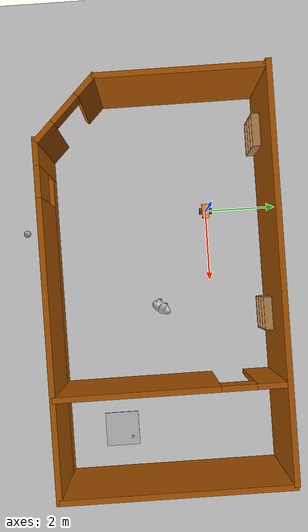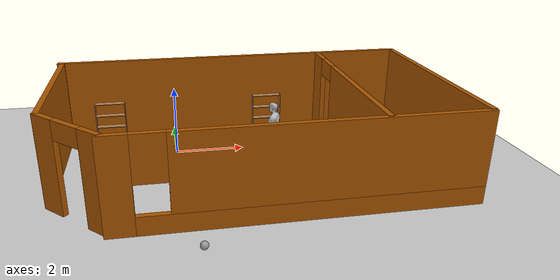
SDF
<sdf version="1.6">
 <world name="default">
  <light name="sun" type="directional">
   <pose>0 0 10 0 -0 0</pose>
   <diffuse>0.8 0.8 0.8 1</diffuse>
   <specular>0.1 0.1 0.1 1</specular>
   <attenuation>
    <range>1000</range>
    <constant>0.9</constant>
    <linear>0.01</linear>
    <quadratic>0.001</quadratic>
   </attenuation>
   <direction>-0.5 0.5 -1</direction>
  </light>
  <model name="ground_plane">
   <static>1</static>
   <link name="link">
    <collision name="collision">
     <geometry><plane><normal>0 0 1</normal><size>100 100</size></plane></geometry>
     <surface><friction><ode><mu>100</mu><mu2>50</mu2></ode></friction></surface>
    </collision>
    <visual name="visual">
     <cast_shadows>0</cast_shadows>
     <geometry><plane><normal>0 0 1</normal><size>100 100</size></plane></geometry>
     <material>
      <script><uri>file://media/materials/scripts/gazebo.material</uri><name>Gazebo/Grey</name></script>
     </material>
    </visual>
   </link>
  </model>
  <gravity>0 0 -9.8</gravity>
  <magnetic_field>6e-06 2.3e-05 -4.2e-05</magnetic_field>
  <atmosphere type="adiabatic"/>
  <physics name="default_physics" default="0" type="ode">
   <max_step_size>0.001</max_step_size>
   <real_time_factor>1</real_time_factor>
   <real_time_update_rate>1000</real_time_update_rate>
  </physics>
  <scene><ambient>0.4 0.4 0.4 1</ambient><background>0.7 0.7 0.7 1</background><shadows>1</shadows></scene>
  <spherical_coordinates>
   <surface_model>EARTH_WGS84</surface_model>
   <latitude_deg>0</latitude_deg>
   <longitude_deg>0</longitude_deg>
   <elevation>0</elevation>
   <heading_deg>0</heading_deg>
  </spherical_coordinates>
  <model name="my_robot">
   <link name="robot_footprint">
    <inertial>
     <pose>0.001325 0 0 0 -0 0</pose>
     <mass>15.1</mass>
     <inertia>
      <ixx>0.100002</ixx>
      <ixy>0</ixy>
      <ixz>-1.48675e-07</ixz>
      <iyy>0.103976</iyy>
      <iyz>0</iyz>
      <izz>0.103976</izz>
     </inertia>
    </inertial>
    <collision name="robot_footprint_fixed_joint_lump__collision_collision">
     <geometry><box><size>0.4 0.2 0.1</size></box></geometry>
    </collision>
    <collision name="robot_footprint_fixed_joint_lump__back_caster_collision_collision_1">
     <pose>-0.15 0 -0.05 0 -0 0</pose>
     <geometry><sphere><radius>0.0499</radius></sphere></geometry>
    </collision>
    <collision name="robot_footprint_fixed_joint_lump__front_caster_collision_collision_2">
     <pose>0.15 0 -0.05 0 -0 0</pose>
     <geometry><sphere><radius>0.0499</radius></sphere></geometry>
    </collision>
    <collision name="robot_footprint_fixed_joint_lump__camera_collision_collision_3">
     <pose>0.2 0 0 0 -0 0</pose>
     <geometry><box><size>0.05 0.05 0.05</size></box></geometry>
    </collision>
    <collision name="robot_footprint_fixed_joint_lump__hokuyo_collision_collision_4">
     <pose>0.15 0 0.1 0 -0 0</pose>
     <geometry><box><size>0.1 0.1 0.1</size></box></geometry>
    </collision>
    <visual name="robot_footprint_fixed_joint_lump__chassis_visual_visual">
     <geometry><box><size>0.4 0.2 0.1</size></box></geometry>
     <material>
      <script><name>Gazebo/Orange</name><uri>file://media/materials/scripts/gazebo.material</uri></script>
     </material>
    </visual>
    <visual name="robot_footprint_fixed_joint_lump__back_caster_visual_visual_1">
     <pose>-0.15 0 -0.05 0 -0 0</pose>
     <geometry><sphere><radius>0.05</radius></sphere></geometry>
    </visual>
    <visual name="robot_footprint_fixed_joint_lump__front_caster_visual_visual_2">
     <pose>0.15 0 -0.05 0 -0 0</pose>
     <geometry><sphere><radius>0.05</radius></sphere></geometry>
    </visual>
    <visual name="robot_footprint_fixed_joint_lump__camera_visual_visual_3">
     <pose>0.2 0 0 0 -0 0</pose>
     <geometry><box><size>0.05 0.05 0.05</size></box></geometry>
     <material>
      <script><name>Gazebo/Grey</name><uri>file://media/materials/scripts/gazebo.material</uri></script>
     </material>
    </visual>
    <visual name="robot_footprint_fixed_joint_lump__hokuyo_visual_visual_4">
     <pose>0.15 0 0.1 0 -0 0</pose>
     <geometry>
      <mesh>
       <scale>1 1 1</scale>
       <uri>/home/navars/Desktop/other/nanodegree/robotics-project2-ros/catkin_ws/src/my_robot/meshes/hokuyo.dae</uri>
      </mesh>
     </geometry>
     <material><script><uri>__default__</uri><name>__default__</name></script></material>
    </visual>
    <sensor name="camera1" type="camera">
     <update_rate>30</update_rate>
     <camera name="head">
      <horizontal_fov>1.39626</horizontal_fov>
      <image><width>800</width><height>800</height><format>R8G8B8</format></image>
      <clip><near>0.02</near><far>300</far></clip>
     </camera>
     <plugin name="camera_controller" filename="libgazebo_ros_camera.so">
      <alwaysOn>true</alwaysOn>
      <updateRate>0.0</updateRate>
      <cameraName>camera</cameraName>
      <imageTopicName>rgb/image_raw</imageTopicName>
      <cameraInfoTopicName>rgb/camera_info</cameraInfoTopicName>
      <frameName>camera</frameName>
      <hackBaseline>0.07</hackBaseline>
      <distortionK1>0.0</distortionK1>
      <distortionK2>0.0</distortionK2>
      <distortionK3>0.0</distortionK3>
      <distortionT1>0.0</distortionT1>
      <distortionT2>0.0</distortionT2>
      <robotNamespace>/</robotNamespace>
     </plugin>
     <pose>0.2 0 0 0 -0 0</pose>
    </sensor>
    <sensor name="head_hokuyo_sensor" type="ray">
     <visualize>0</visualize>
     <update_rate>40</update_rate>
     <ray>
      <scan>
       <horizontal>
        <samples>720</samples>
        <resolution>1</resolution>
        <min_angle>-1.5708</min_angle>
        <max_angle>1.5708</max_angle>
       </horizontal>
       <vertical><samples>1</samples><min_angle>0</min_angle><max_angle>0</max_angle></vertical>
      </scan>
      <range><min>0.1</min><max>30</max><resolution>0.01</resolution></range>
      <noise><type>gaussian</type><mean>0</mean><stddev>0.01</stddev></noise>
     </ray>
     <plugin name="gazebo_ros_head_hokuyo_controller" filename="libgazebo_ros_laser.so">
      <topicName>/scan</topicName>
      <frameName>hokuyo</frameName>
      <robotNamespace>/</robotNamespace>
     </plugin>
     <pose>0.15 0 0.1 0 -0 0</pose>
    </sensor>
   </link>
   <link name="left_wheel">
    <pose>0 0.15 0 0 -0 0</pose>
    <inertial>
     <pose>0 0 0 -0 1.5707 1.5707</pose>
     <mass>5</mass>
     <inertia><ixx>0.1</ixx><ixy>0</ixy><ixz>0</ixz><iyy>0.1</iyy><iyz>0</iyz><izz>0.1</izz></inertia>
    </inertial>
    <collision name="left_wheel_collision_collision">
     <pose>0 0 0 3.14159 1.57079 -1.57089</pose>
     <geometry><cylinder><length>0.05</length><radius>0.1</radius></cylinder></geometry>
    </collision>
    <visual name="left_wheel_visual_visual">
     <pose>0 0 0 3.14159 1.57079 -1.57089</pose>
     <geometry><cylinder><length>0.05</length><radius>0.1</radius></cylinder></geometry>
     <material>
      <script><name>Gazebo/DarkGrey</name><uri>file://media/materials/scripts/gazebo.material</uri></script>
     </material>
    </visual>
   </link>
   <joint name="left_wheel_hinge" type="revolute">
    <child>left_wheel</child>
    <parent>robot_footprint</parent>
    <axis>
     <xyz>0 1 0</xyz>
     <limit><lower>-1e+16</lower><upper>1e+16</upper></limit>
     <dynamics>
      <damping>1</damping>
      <friction>1</friction>
      <spring_reference>0</spring_reference>
      <spring_stiffness>0</spring_stiffness>
     </dynamics>
     <use_parent_model_frame>1</use_parent_model_frame>
    </axis>
   </joint>
   <link name="right_wheel">
    <pose>0 -0.15 0 0 -0 0</pose>
    <inertial>
     <pose>0 0 0 -0 1.5707 1.5707</pose>
     <mass>5</mass>
     <inertia><ixx>0.1</ixx><ixy>0</ixy><ixz>0</ixz><iyy>0.1</iyy><iyz>0</iyz><izz>0.1</izz></inertia>
    </inertial>
    <collision name="right_wheel_collision_collision">
     <pose>0 0 0 3.14159 1.57079 -1.57089</pose>
     <geometry><cylinder><length>0.05</length><radius>0.1</radius></cylinder></geometry>
    </collision>
    <visual name="right_wheel_visual_visual">
     <pose>0 0 0 3.14159 1.57079 -1.57089</pose>
     <geometry><cylinder><length>0.05</length><radius>0.1</radius></cylinder></geometry>
     <material>
      <script><name>Gazebo/DarkGrey</name><uri>file://media/materials/scripts/gazebo.material</uri></script>
     </material>
    </visual>
   </link>
   <joint name="right_wheel_hinge" type="revolute">
    <child>right_wheel</child>
    <parent>robot_footprint</parent>
    <axis>
     <xyz>0 1 0</xyz>
     <limit><lower>-1e+16</lower><upper>1e+16</upper></limit>
     <dynamics>
      <damping>1</damping>
      <friction>1</friction>
      <spring_reference>0</spring_reference>
      <spring_stiffness>0</spring_stiffness>
     </dynamics>
     <use_parent_model_frame>1</use_parent_model_frame>
    </axis>
   </joint>
   <static>0</static>
   <plugin name="differential_drive_controller" filename="libgazebo_ros_diff_drive.so">
    <legacyMode>false</legacyMode>
    <alwaysOn>true</alwaysOn>
    <updateRate>10</updateRate>
    <leftJoint>left_wheel_hinge</leftJoint>
    <rightJoint>right_wheel_hinge</rightJoint>
    <wheelSeparation>0.4</wheelSeparation>
    <wheelDiameter>0.2</wheelDiameter>
    <torque>10</torque>
    <commandTopic>cmd_vel</commandTopic>
    <odometryTopic>odom</odometryTopic>
    <odometryFrame>odom</odometryFrame>
    <robotBaseFrame>robot_footprint</robotBaseFrame>
    <publishWheelTF>false</publishWheelTF>
    <publishWheelJointState>false</publishWheelJointState>
    <rosDebugLevel>na</rosDebugLevel>
    <wheelAcceleration>0</wheelAcceleration>
    <wheelTorque>5</wheelTorque>
    <odometrySource>world</odometrySource>
    <publishTf>1</publishTf>
    <publishOdomTF>true</publishOdomTF>
    <robotNamespace>/</robotNamespace>
   </plugin>
   <pose>-7e-06 -0.009533 0.099995 2.1e-05 0.000657 0.002562</pose>
  </model>
  <model name="ingrid_0_0">
   <link name="Wall_0">
    <pose>-5.26939 0.734924 0 0 0 -1.5708</pose>
    <inertial>
     <mass>0.979243</mass>
     <inertia>
      <ixx>0.979243</ixx>
      <ixy>0</ixy>
      <ixz>0</ixz>
      <iyy>0.959129</iyy>
      <iyz>0</iyz>
      <izz>0.959129</izz>
     </inertia>
    </inertial>
    <visual name="Wall_0_Visual">
     <pose>0 0 1.25 0 -0 0</pose>
     <geometry><box><size>4.40661 0.15 2.5</size></box></geometry>
     <material>
      <script><uri>file://media/materials/scripts/gazebo.material</uri><name>Gazebo/Grey</name></script>
      <ambient>0.667 0.333 0 1</ambient>
      <diffuse>0.7 0.7 0.7 1</diffuse>
      <specular>0.01 0.01 0.01 1</specular>
      <emissive>0 0 0 1</emissive>
      <shader type="vertex"><normal_map>__default__</normal_map></shader>
     </material>
    </visual>
    <collision name="Wall_0_Collision">
     <pose>0 0 1.25 0 -0 0</pose>
     <geometry><box><size>4.40661 0.15 2.5</size></box></geometry>
     <surface>
      <friction>
       <ode><mu>1</mu><mu2>1</mu2><fdir1>0 0 0</fdir1><slip1>0</slip1><slip2>0</slip2></ode>
       <torsional>
        <coefficient>1</coefficient>
        <patch_radius>0</patch_radius>
        <surface_radius>0</surface_radius>
        <use_patch_radius>1</use_patch_radius>
        <ode><slip>0</slip></ode>
       </torsional>
      </friction>
      <bounce><restitution_coefficient>0</restitution_coefficient><threshold>1e+06</threshold></bounce>
      <contact>
       <collide_without_contact>0</collide_without_contact>
       <collide_without_contact_bitmask>1</collide_without_contact_bitmask>
       <collide_bitmask>1</collide_bitmask>
       <ode>
        <soft_cfm>0</soft_cfm>
        <soft_erp>0.2</soft_erp>
        <kp>1e+13</kp>
        <kd>1</kd>
        <max_vel>0.01</max_vel>
        <min_depth>0</min_depth>
       </ode>
       <bullet>
        <split_impulse>1</split_impulse>
        <split_impulse_penetration_threshold>-0.01</split_impulse_penetration_threshold>
        <soft_cfm>0</soft_cfm>
        <soft_erp>0.2</soft_erp>
        <kp>1e+13</kp>
        <kd>1</kd>
       </bullet>
      </contact>
     </surface>
    </collision>
   </link>
   <link name="Wall_1">
    <pose>-4.52693 -2.18254 0 0 0 -0.785398</pose>
    <visual name="Wall_1_Visual_0">
     <pose>-0.770615 0 1.25 0 -0 0</pose>
     <geometry><box><size>0.708769 0.15 2.5</size></box></geometry>
     <material>
      <script><uri>file://media/materials/scripts/gazebo.material</uri><name>Gazebo/Grey</name></script>
      <ambient>0.666667 0.333333 0 1</ambient>
      <diffuse>0.7 0.7 0.7 1</diffuse>
      <specular>0.01 0.01 0.01 1</specular>
      <emissive>0 0 0 1</emissive>
     </material>
    </visual>
    <visual name="Wall_1_Visual_1">
     <pose>0.804385 0 1.25 0 -0 0</pose>
     <geometry><box><size>0.641231 0.15 2.5</size></box></geometry>
     <material>
      <script><uri>file://media/materials/scripts/gazebo.material</uri><name>Gazebo/Grey</name></script>
      <ambient>0.666667 0.333333 0 1</ambient>
      <diffuse>0.7 0.7 0.7 1</diffuse>
      <specular>0.01 0.01 0.01 1</specular>
      <emissive>0 0 0 1</emissive>
     </material>
    </visual>
    <visual name="Wall_1_Visual_2">
     <pose>0.033769 0 2.25 0 -0 0</pose>
     <geometry><box><size>0.9 0.15 0.5</size></box></geometry>
     <material>
      <script><uri>file://media/materials/scripts/gazebo.material</uri><name>Gazebo/Grey</name></script>
      <ambient>0.666667 0.333333 0 1</ambient>
      <diffuse>0.7 0.7 0.7 1</diffuse>
      <specular>0.01 0.01 0.01 1</specular>
      <emissive>0 0 0 1</emissive>
     </material>
    </visual>
    <collision name="Wall_1_Collision_0">
     <pose>-0.770615 0 1.25 0 -0 0</pose>
     <geometry><box><size>0.708769 0.15 2.5</size></box></geometry>
     <surface>
      <friction>
       <ode><mu>1</mu><mu2>1</mu2><fdir1>0 0 0</fdir1><slip1>0</slip1><slip2>0</slip2></ode>
       <torsional>
        <coefficient>1</coefficient>
        <patch_radius>0</patch_radius>
        <surface_radius>0</surface_radius>
        <use_patch_radius>1</use_patch_radius>
        <ode><slip>0</slip></ode>
       </torsional>
      </friction>
      <bounce><restitution_coefficient>0</restitution_coefficient><threshold>1e+06</threshold></bounce>
      <contact>
       <collide_without_contact>0</collide_without_contact>
       <collide_without_contact_bitmask>1</collide_without_contact_bitmask>
       <collide_bitmask>1</collide_bitmask>
       <ode>
        <soft_cfm>0</soft_cfm>
        <soft_erp>0.2</soft_erp>
        <kp>1e+13</kp>
        <kd>1</kd>
        <max_vel>0.01</max_vel>
        <min_depth>0</min_depth>
       </ode>
       <bullet>
        <split_impulse>1</split_impulse>
        <split_impulse_penetration_threshold>-0.01</split_impulse_penetration_threshold>
        <soft_cfm>0</soft_cfm>
        <soft_erp>0.2</soft_erp>
        <kp>1e+13</kp>
        <kd>1</kd>
       </bullet>
      </contact>
     </surface>
    </collision>
    <collision name="Wall_1_Collision_1">
     <pose>0.804385 0 1.25 0 -0 0</pose>
     <geometry><box><size>0.641231 0.15 2.5</size></box></geometry>
     <surface>
      <friction>
       <ode><mu>1</mu><mu2>1</mu2><fdir1>0 0 0</fdir1><slip1>0</slip1><slip2>0</slip2></ode>
       <torsional>
        <coefficient>1</coefficient>
        <patch_radius>0</patch_radius>
        <surface_radius>0</surface_radius>
        <use_patch_radius>1</use_patch_radius>
        <ode><slip>0</slip></ode>
       </torsional>
      </friction>
      <bounce><restitution_coefficient>0</restitution_coefficient><threshold>1e+06</threshold></bounce>
      <contact>
       <collide_without_contact>0</collide_without_contact>
       <collide_without_contact_bitmask>1</collide_without_contact_bitmask>
       <collide_bitmask>1</collide_bitmask>
       <ode>
        <soft_cfm>0</soft_cfm>
        <soft_erp>0.2</soft_erp>
        <kp>1e+13</kp>
        <kd>1</kd>
        <max_vel>0.01</max_vel>
        <min_depth>0</min_depth>
       </ode>
       <bullet>
        <split_impulse>1</split_impulse>
        <split_impulse_penetration_threshold>-0.01</split_impulse_penetration_threshold>
        <soft_cfm>0</soft_cfm>
        <soft_erp>0.2</soft_erp>
        <kp>1e+13</kp>
        <kd>1</kd>
       </bullet>
      </contact>
     </surface>
    </collision>
    <collision name="Wall_1_Collision_2">
     <pose>0.033769 0 2.25 0 -0 0</pose>
     <geometry><box><size>0.9 0.15 0.5</size></box></geometry>
     <surface>
      <friction>
       <ode><mu>1</mu><mu2>1</mu2><fdir1>0 0 0</fdir1><slip1>0</slip1><slip2>0</slip2></ode>
       <torsional>
        <coefficient>1</coefficient>
        <patch_radius>0</patch_radius>
        <surface_radius>0</surface_radius>
        <use_patch_radius>1</use_patch_radius>
        <ode><slip>0</slip></ode>
       </torsional>
      </friction>
      <bounce><restitution_coefficient>0</restitution_coefficient><threshold>1e+06</threshold></bounce>
      <contact>
       <collide_without_contact>0</collide_without_contact>
       <collide_without_contact_bitmask>1</collide_without_contact_bitmask>
       <collide_bitmask>1</collide_bitmask>
       <ode>
        <soft_cfm>0</soft_cfm>
        <soft_erp>0.2</soft_erp>
        <kp>1e+13</kp>
        <kd>1</kd>
        <max_vel>0.01</max_vel>
        <min_depth>0</min_depth>
       </ode>
       <bullet>
        <split_impulse>1</split_impulse>
        <split_impulse_penetration_threshold>-0.01</split_impulse_penetration_threshold>
        <soft_cfm>0</soft_cfm>
        <soft_erp>0.2</soft_erp>
        <kp>1e+13</kp>
        <kd>1</kd>
       </bullet>
      </contact>
     </surface>
    </collision>
   </link>
   <link name="Wall_2">
    <pose>0.763232 -2.99616 -0.016019 0 -0 0</pose>
    <visual name="Wall_2_Visual_0">
     <pose>-4.26276 0 1.25 0 -0 0</pose>
     <geometry><box><size>0.724472 0.15 2.5</size></box></geometry>
     <material>
      <script><uri>file://media/materials/scripts/gazebo.material</uri><name>Gazebo/Grey</name></script>
      <ambient>0.666667 0.333333 0 1</ambient>
      <diffuse>0.7 0.7 0.7 1</diffuse>
      <specular>0.01 0.01 0.01 1</specular>
      <emissive>0 0 0 1</emissive>
     </material>
    </visual>
    <visual name="Wall_2_Visual_1">
     <pose>0.362236 0 0.25 0 -0 0</pose>
     <geometry><box><size>8.52553 0.15 0.5</size></box></geometry>
     <material>
      <script><uri>file://media/materials/scripts/gazebo.material</uri><name>Gazebo/Grey</name></script>
      <ambient>0.666667 0.333333 0 1</ambient>
      <diffuse>0.7 0.7 0.7 1</diffuse>
      <specular>0.01 0.01 0.01 1</specular>
      <emissive>0 0 0 1</emissive>
     </material>
    </visual>
    <visual name="Wall_2_Visual_3">
     <pose>-3.50053 0 1.9 0 -0 0</pose>
     <geometry><box><size>0.8 0.15 1.2</size></box></geometry>
     <material>
      <script><uri>file://media/materials/scripts/gazebo.material</uri><name>Gazebo/Grey</name></script>
      <ambient>0.666667 0.333333 0 1</ambient>
      <diffuse>0.7 0.7 0.7 1</diffuse>
      <specular>0.01 0.01 0.01 1</specular>
      <emissive>0 0 0 1</emissive>
     </material>
    </visual>
    <visual name="Wall_2_Visual_2">
     <pose>0.762236 0 1.5 0 -0 0</pose>
     <geometry><box><size>7.72553 0.15 2</size></box></geometry>
     <material>
      <script><uri>file://media/materials/scripts/gazebo.material</uri><name>Gazebo/Grey</name></script>
      <ambient>0.666667 0.333333 0 1</ambient>
      <diffuse>0.7 0.7 0.7 1</diffuse>
      <specular>0.01 0.01 0.01 1</specular>
      <emissive>0 0 0 1</emissive>
     </material>
    </visual>
    <collision name="Wall_2_Collision_0">
     <pose>-4.26276 0 1.25 0 -0 0</pose>
     <geometry><box><size>0.724472 0.15 2.5</size></box></geometry>
     <surface>
      <friction>
       <ode><mu>1</mu><mu2>1</mu2><fdir1>0 0 0</fdir1><slip1>0</slip1><slip2>0</slip2></ode>
       <torsional>
        <coefficient>1</coefficient>
        <patch_radius>0</patch_radius>
        <surface_radius>0</surface_radius>
        <use_patch_radius>1</use_patch_radius>
        <ode><slip>0</slip></ode>
       </torsional>
      </friction>
      <bounce><restitution_coefficient>0</restitution_coefficient><threshold>1e+06</threshold></bounce>
      <contact>
       <collide_without_contact>0</collide_without_contact>
       <collide_without_contact_bitmask>1</collide_without_contact_bitmask>
       <collide_bitmask>1</collide_bitmask>
       <ode>
        <soft_cfm>0</soft_cfm>
        <soft_erp>0.2</soft_erp>
        <kp>1e+13</kp>
        <kd>1</kd>
        <max_vel>0.01</max_vel>
        <min_depth>0</min_depth>
       </ode>
       <bullet>
        <split_impulse>1</split_impulse>
        <split_impulse_penetration_threshold>-0.01</split_impulse_penetration_threshold>
        <soft_cfm>0</soft_cfm>
        <soft_erp>0.2</soft_erp>
        <kp>1e+13</kp>
        <kd>1</kd>
       </bullet>
      </contact>
     </surface>
    </collision>
    <collision name="Wall_2_Collision_2">
     <pose>0.762236 0 1.5 0 -0 0</pose>
     <geometry><box><size>7.72553 0.15 2</size></box></geometry>
     <surface>
      <friction>
       <ode><mu>1</mu><mu2>1</mu2><fdir1>0 0 0</fdir1><slip1>0</slip1><slip2>0</slip2></ode>
       <torsional>
        <coefficient>1</coefficient>
        <patch_radius>0</patch_radius>
        <surface_radius>0</surface_radius>
        <use_patch_radius>1</use_patch_radius>
        <ode><slip>0</slip></ode>
       </torsional>
      </friction>
      <bounce><restitution_coefficient>0</restitution_coefficient><threshold>1e+06</threshold></bounce>
      <contact>
       <collide_without_contact>0</collide_without_contact>
       <collide_without_contact_bitmask>1</collide_without_contact_bitmask>
       <collide_bitmask>1</collide_bitmask>
       <ode>
        <soft_cfm>0</soft_cfm>
        <soft_erp>0.2</soft_erp>
        <kp>1e+13</kp>
        <kd>1</kd>
        <max_vel>0.01</max_vel>
        <min_depth>0</min_depth>
       </ode>
       <bullet>
        <split_impulse>1</split_impulse>
        <split_impulse_penetration_threshold>-0.01</split_impulse_penetration_threshold>
        <soft_cfm>0</soft_cfm>
        <soft_erp>0.2</soft_erp>
        <kp>1e+13</kp>
        <kd>1</kd>
       </bullet>
      </contact>
     </surface>
    </collision>
    <collision name="Wall_2_Collision_1">
     <pose>0.362236 0 0.25 0 -0 0</pose>
     <geometry><box><size>8.52553 0.15 0.5</size></box></geometry>
     <surface>
      <friction>
       <ode><mu>1</mu><mu2>1</mu2><fdir1>0 0 0</fdir1><slip1>0</slip1><slip2>0</slip2></ode>
       <torsional>
        <coefficient>1</coefficient>
        <patch_radius>0</patch_radius>
        <surface_radius>0</surface_radius>
        <use_patch_radius>1</use_patch_radius>
        <ode><slip>0</slip></ode>
       </torsional>
      </friction>
      <bounce><restitution_coefficient>0</restitution_coefficient><threshold>1e+06</threshold></bounce>
      <contact>
       <collide_without_contact>0</collide_without_contact>
       <collide_without_contact_bitmask>1</collide_without_contact_bitmask>
       <collide_bitmask>1</collide_bitmask>
       <ode>
        <soft_cfm>0</soft_cfm>
        <soft_erp>0.2</soft_erp>
        <kp>1e+13</kp>
        <kd>1</kd>
        <max_vel>0.01</max_vel>
        <min_depth>0</min_depth>
       </ode>
       <bullet>
        <split_impulse>1</split_impulse>
        <split_impulse_penetration_threshold>-0.01</split_impulse_penetration_threshold>
        <soft_cfm>0</soft_cfm>
        <soft_erp>0.2</soft_erp>
        <kp>1e+13</kp>
        <kd>1</kd>
       </bullet>
      </contact>
     </surface>
    </collision>
    <collision name="Wall_2_Collision_3">
     <pose>-3.50053 0 1.9 0 -0 0</pose>
     <geometry><box><size>0.8 0.15 1.2</size></box></geometry>
     <surface>
      <friction>
       <ode><mu>1</mu><mu2>1</mu2><fdir1>0 0 0</fdir1><slip1>0</slip1><slip2>0</slip2></ode>
       <torsional>
        <coefficient>1</coefficient>
        <patch_radius>0</patch_radius>
        <surface_radius>0</surface_radius>
        <use_patch_radius>1</use_patch_radius>
        <ode><slip>0</slip></ode>
       </torsional>
      </friction>
      <bounce><restitution_coefficient>0</restitution_coefficient><threshold>1e+06</threshold></bounce>
      <contact>
       <collide_without_contact>0</collide_without_contact>
       <collide_without_contact_bitmask>1</collide_without_contact_bitmask>
       <collide_bitmask>1</collide_bitmask>
       <ode>
        <soft_cfm>0</soft_cfm>
        <soft_erp>0.2</soft_erp>
        <kp>1e+13</kp>
        <kd>1</kd>
        <max_vel>0.01</max_vel>
        <min_depth>0</min_depth>
       </ode>
       <bullet>
        <split_impulse>1</split_impulse>
        <split_impulse_penetration_threshold>-0.01</split_impulse_penetration_threshold>
        <soft_cfm>0</soft_cfm>
        <soft_erp>0.2</soft_erp>
        <kp>1e+13</kp>
        <kd>1</kd>
       </bullet>
      </contact>
     </surface>
    </collision>
   </link>
   <link name="Wall_3">
    <pose>5.31359 0.001601 0 0 -0 1.5708</pose>
    <visual name="Wall_3_Visual">
     <pose>0 0 1.25 0 -0 0</pose>
     <geometry><box><size>6 0.15 2.5</size></box></geometry>
     <material>
      <script><uri>file://media/materials/scripts/gazebo.material</uri><name>Gazebo/Grey</name></script>
      <ambient>0.666667 0.333333 0 1</ambient>
      <diffuse>0.7 0.7 0.7 1</diffuse>
      <specular>0.01 0.01 0.01 1</specular>
      <emissive>0 0 0 1</emissive>
     </material>
    </visual>
    <collision name="Wall_3_Collision">
     <pose>0 0 1.25 0 -0 0</pose>
     <geometry><box><size>6 0.15 2.5</size></box></geometry>
     <surface>
      <friction>
       <ode><mu>1</mu><mu2>1</mu2><fdir1>0 0 0</fdir1><slip1>0</slip1><slip2>0</slip2></ode>
       <torsional>
        <coefficient>1</coefficient>
        <patch_radius>0</patch_radius>
        <surface_radius>0</surface_radius>
        <use_patch_radius>1</use_patch_radius>
        <ode><slip>0</slip></ode>
       </torsional>
      </friction>
      <bounce><restitution_coefficient>0</restitution_coefficient><threshold>1e+06</threshold></bounce>
      <contact>
       <collide_without_contact>0</collide_without_contact>
       <collide_without_contact_bitmask>1</collide_without_contact_bitmask>
       <collide_bitmask>1</collide_bitmask>
       <ode>
        <soft_cfm>0</soft_cfm>
        <soft_erp>0.2</soft_erp>
        <kp>1e+13</kp>
        <kd>1</kd>
        <max_vel>0.01</max_vel>
        <min_depth>0</min_depth>
       </ode>
       <bullet>
        <split_impulse>1</split_impulse>
        <split_impulse_penetration_threshold>-0.01</split_impulse_penetration_threshold>
        <soft_cfm>0</soft_cfm>
        <soft_erp>0.2</soft_erp>
        <kp>1e+13</kp>
        <kd>1</kd>
       </bullet>
      </contact>
     </surface>
    </collision>
   </link>
   <link name="Wall_4">
    <pose>-0.052807 2.95965 0.002617 0 -0 3.14159</pose>
    <inertial>
     <inertia><ixx>nan</ixx><ixy>0</ixy><ixz>0</ixz><iyy>nan</iyy><iyz>0</iyz><izz>nan</izz></inertia>
     <mass>0</mass>
    </inertial>
    <visual name="Wall_4_Visual">
     <pose>0 0 1.25 0 -0 0</pose>
     <geometry><box><size>10.7297 0.15 2.5</size></box></geometry>
     <material>
      <script><uri>file://media/materials/scripts/gazebo.material</uri><name>Gazebo/Grey</name></script>
      <ambient>0.666667 0.333333 0 1</ambient>
      <diffuse>0.7 0.7 0.7 1</diffuse>
      <specular>0.01 0.01 0.01 1</specular>
      <emissive>0 0 0 1</emissive>
     </material>
    </visual>
    <collision name="Wall_4_Collision">
     <pose>0 0 1.25 0 -0 0</pose>
     <geometry><box><size>10.7297 0.15 2.5</size></box></geometry>
     <surface>
      <friction>
       <ode><mu>1</mu><mu2>1</mu2><fdir1>0 0 0</fdir1><slip1>0</slip1><slip2>0</slip2></ode>
       <torsional>
        <coefficient>1</coefficient>
        <patch_radius>0</patch_radius>
        <surface_radius>0</surface_radius>
        <use_patch_radius>1</use_patch_radius>
        <ode><slip>0</slip></ode>
       </torsional>
      </friction>
      <bounce><restitution_coefficient>0</restitution_coefficient><threshold>1e+06</threshold></bounce>
      <contact>
       <collide_without_contact>0</collide_without_contact>
       <collide_without_contact_bitmask>1</collide_without_contact_bitmask>
       <collide_bitmask>1</collide_bitmask>
       <ode>
        <soft_cfm>0</soft_cfm>
        <soft_erp>0.2</soft_erp>
        <kp>1e+13</kp>
        <kd>1</kd>
        <max_vel>0.01</max_vel>
        <min_depth>0</min_depth>
       </ode>
       <bullet>
        <split_impulse>1</split_impulse>
        <split_impulse_penetration_threshold>-0.01</split_impulse_penetration_threshold>
        <soft_cfm>0</soft_cfm>
        <soft_erp>0.2</soft_erp>
        <kp>1e+13</kp>
        <kd>1</kd>
       </bullet>
      </contact>
     </surface>
    </collision>
   </link>
   <link name="Wall_5">
    <pose>-5.27693 2.91746 0 0 0 -0.785398</pose>
    <visual name="Wall_5_Visual">
     <pose>0 0 1.25 0 -0 0</pose>
     <geometry><box><size>0.17132 0.15 2.5</size></box></geometry>
     <material>
      <script><uri>file://media/materials/scripts/gazebo.material</uri><name>Gazebo/Grey</name></script>
      <ambient>0.666667 0.333333 0 1</ambient>
      <diffuse>0.7 0.7 0.7 1</diffuse>
      <specular>0.01 0.01 0.01 1</specular>
      <emissive>0 0 0 1</emissive>
     </material>
    </visual>
    <collision name="Wall_5_Collision">
     <pose>0 0 1.25 0 -0 0</pose>
     <geometry><box><size>0.17132 0.15 2.5</size></box></geometry>
     <surface>
      <friction>
       <ode><mu>1</mu><mu2>1</mu2><fdir1>0 0 0</fdir1><slip1>0</slip1><slip2>0</slip2></ode>
       <torsional>
        <coefficient>1</coefficient>
        <patch_radius>0</patch_radius>
        <surface_radius>0</surface_radius>
        <use_patch_radius>1</use_patch_radius>
        <ode><slip>0</slip></ode>
       </torsional>
      </friction>
      <bounce><restitution_coefficient>0</restitution_coefficient><threshold>1e+06</threshold></bounce>
      <contact>
       <collide_without_contact>0</collide_without_contact>
       <collide_without_contact_bitmask>1</collide_without_contact_bitmask>
       <collide_bitmask>1</collide_bitmask>
       <ode>
        <soft_cfm>0</soft_cfm>
        <soft_erp>0.2</soft_erp>
        <kp>1e+13</kp>
        <kd>1</kd>
        <max_vel>0.01</max_vel>
        <min_depth>0</min_depth>
       </ode>
       <bullet>
        <split_impulse>1</split_impulse>
        <split_impulse_penetration_threshold>-0.01</split_impulse_penetration_threshold>
        <soft_cfm>0</soft_cfm>
        <soft_erp>0.2</soft_erp>
        <kp>1e+13</kp>
        <kd>1</kd>
       </bullet>
      </contact>
     </surface>
    </collision>
   </link>
   <link name="Wall_7">
    <pose>2.74465 -0.011736 0 0 0 -1.5708</pose>
    <visual name="Wall_7_Visual_0">
     <pose>-2.5757 0 1.25 0 -0 0</pose>
     <geometry><box><size>0.848609 0.15 2.5</size></box></geometry>
     <material>
      <script><uri>file://media/materials/scripts/gazebo.material</uri><name>Gazebo/Grey</name></script>
      <ambient>0.666667 0.333333 0 1</ambient>
      <diffuse>0.7 0.7 0.7 1</diffuse>
      <specular>0.01 0.01 0.01 1</specular>
      <emissive>0 0 0 1</emissive>
     </material>
    </visual>
    <visual name="Wall_7_Visual_1">
     <pose>0.874305 0 1.25 0 -0 0</pose>
     <geometry><box><size>4.25139 0.15 2.5</size></box></geometry>
     <material>
      <script><uri>file://media/materials/scripts/gazebo.material</uri><name>Gazebo/Grey</name></script>
      <ambient>0.666667 0.333333 0 1</ambient>
      <diffuse>0.7 0.7 0.7 1</diffuse>
      <specular>0.01 0.01 0.01 1</specular>
      <emissive>0 0 0 1</emissive>
     </material>
    </visual>
    <visual name="Wall_7_Visual_2">
     <pose>-1.70139 0 2.25 0 -0 0</pose>
     <geometry><box><size>0.9 0.15 0.5</size></box></geometry>
     <material>
      <script><uri>file://media/materials/scripts/gazebo.material</uri><name>Gazebo/Grey</name></script>
      <ambient>0.666667 0.333333 0 1</ambient>
      <diffuse>0.7 0.7 0.7 1</diffuse>
      <specular>0.01 0.01 0.01 1</specular>
      <emissive>0 0 0 1</emissive>
     </material>
    </visual>
    <collision name="Wall_7_Collision_1">
     <pose>0.874305 0 1.25 0 -0 0</pose>
     <geometry><box><size>4.25139 0.15 2.5</size></box></geometry>
     <surface>
      <friction>
       <ode><mu>1</mu><mu2>1</mu2><fdir1>0 0 0</fdir1><slip1>0</slip1><slip2>0</slip2></ode>
       <torsional>
        <coefficient>1</coefficient>
        <patch_radius>0</patch_radius>
        <surface_radius>0</surface_radius>
        <use_patch_radius>1</use_patch_radius>
        <ode><slip>0</slip></ode>
       </torsional>
      </friction>
      <bounce><restitution_coefficient>0</restitution_coefficient><threshold>1e+06</threshold></bounce>
      <contact>
       <collide_without_contact>0</collide_without_contact>
       <collide_without_contact_bitmask>1</collide_without_contact_bitmask>
       <collide_bitmask>1</collide_bitmask>
       <ode>
        <soft_cfm>0</soft_cfm>
        <soft_erp>0.2</soft_erp>
        <kp>1e+13</kp>
        <kd>1</kd>
        <max_vel>0.01</max_vel>
        <min_depth>0</min_depth>
       </ode>
       <bullet>
        <split_impulse>1</split_impulse>
        <split_impulse_penetration_threshold>-0.01</split_impulse_penetration_threshold>
        <soft_cfm>0</soft_cfm>
        <soft_erp>0.2</soft_erp>
        <kp>1e+13</kp>
        <kd>1</kd>
       </bullet>
      </contact>
     </surface>
    </collision>
    <collision name="Wall_7_Collision_0">
     <pose>-2.5757 0 1.25 0 -0 0</pose>
     <geometry><box><size>0.848609 0.15 2.5</size></box></geometry>
     <surface>
      <friction>
       <ode><mu>1</mu><mu2>1</mu2><fdir1>0 0 0</fdir1><slip1>0</slip1><slip2>0</slip2></ode>
       <torsional>
        <coefficient>1</coefficient>
        <patch_radius>0</patch_radius>
        <surface_radius>0</surface_radius>
        <use_patch_radius>1</use_patch_radius>
        <ode><slip>0</slip></ode>
       </torsional>
      </friction>
      <bounce><restitution_coefficient>0</restitution_coefficient><threshold>1e+06</threshold></bounce>
      <contact>
       <collide_without_contact>0</collide_without_contact>
       <collide_without_contact_bitmask>1</collide_without_contact_bitmask>
       <collide_bitmask>1</collide_bitmask>
       <ode>
        <soft_cfm>0</soft_cfm>
        <soft_erp>0.2</soft_erp>
        <kp>1e+13</kp>
        <kd>1</kd>
        <max_vel>0.01</max_vel>
        <min_depth>0</min_depth>
       </ode>
       <bullet>
        <split_impulse>1</split_impulse>
        <split_impulse_penetration_threshold>-0.01</split_impulse_penetration_threshold>
        <soft_cfm>0</soft_cfm>
        <soft_erp>0.2</soft_erp>
        <kp>1e+13</kp>
        <kd>1</kd>
       </bullet>
      </contact>
     </surface>
    </collision>
    <collision name="Wall_7_Collision_2">
     <pose>-1.70139 0 2.25 0 -0 0</pose>
     <geometry><box><size>0.9 0.15 0.5</size></box></geometry>
     <surface>
      <friction>
       <ode><mu>1</mu><mu2>1</mu2><fdir1>0 0 0</fdir1><slip1>0</slip1><slip2>0</slip2></ode>
       <torsional>
        <coefficient>1</coefficient>
        <patch_radius>0</patch_radius>
        <surface_radius>0</surface_radius>
        <use_patch_radius>1</use_patch_radius>
        <ode><slip>0</slip></ode>
       </torsional>
      </friction>
      <bounce><restitution_coefficient>0</restitution_coefficient><threshold>1e+06</threshold></bounce>
      <contact>
       <collide_without_contact>0</collide_without_contact>
       <collide_without_contact_bitmask>1</collide_without_contact_bitmask>
       <collide_bitmask>1</collide_bitmask>
       <ode>
        <soft_cfm>0</soft_cfm>
        <soft_erp>0.2</soft_erp>
        <kp>1e+13</kp>
        <kd>1</kd>
        <max_vel>0.01</max_vel>
        <min_depth>0</min_depth>
       </ode>
       <bullet>
        <split_impulse>1</split_impulse>
        <split_impulse_penetration_threshold>-0.01</split_impulse_penetration_threshold>
        <soft_cfm>0</soft_cfm>
        <soft_erp>0.2</soft_erp>
        <kp>1e+13</kp>
        <kd>1</kd>
       </bullet>
      </contact>
     </surface>
    </collision>
   </link>
   <model name="bookshelf">
    <static>1</static>
    <link name="link">
     <inertial><mass>1</mass></inertial>
     <collision name="back">
      <pose>0 0.005 0.6 0 -0 0</pose>
      <geometry><box><size>0.9 0.01 1.2</size></box></geometry>
     </collision>
     <visual name="visual1">
      <pose>0 0.005 0.6 0 -0 0</pose>
      <geometry><box><size>0.9 0.01 1.2</size></box></geometry>
      <material>
       <script><uri>file://media/materials/scripts/gazebo.material</uri><name>Gazebo/Wood</name></script>
      </material>
     </visual>
     <collision name="left_side">
      <pose>0.45 -0.195 0.6 0 -0 0</pose>
      <geometry><box><size>0.02 0.4 1.2</size></box></geometry>
     </collision>
     <visual name="visual2">
      <pose>0.45 -0.195 0.6 0 -0 0</pose>
      <geometry><box><size>0.02 0.4 1.2</size></box></geometry>
      <material>
       <script><uri>file://media/materials/scripts/gazebo.material</uri><name>Gazebo/Wood</name></script>
      </material>
     </visual>
     <collision name="right_side">
      <pose>-0.45 -0.195 0.6 0 -0 0</pose>
      <geometry><box><size>0.02 0.4 1.2</size></box></geometry>
     </collision>
     <visual name="visual3">
      <pose>-0.45 -0.195 0.6 0 -0 0</pose>
      <geometry><box><size>0.02 0.4 1.2</size></box></geometry>
      <material>
       <script><uri>file://media/materials/scripts/gazebo.material</uri><name>Gazebo/Wood</name></script>
      </material>
     </visual>
     <collision name="bottom">
      <pose>0 -0.195 0.03 0 -0 0</pose>
      <geometry><box><size>0.88 0.4 0.06</size></box></geometry>
     </collision>
     <visual name="visual4">
      <pose>0 -0.195 0.03 0 -0 0</pose>
      <geometry><box><size>0.88 0.4 0.06</size></box></geometry>
      <material>
       <script><uri>file://media/materials/scripts/gazebo.material</uri><name>Gazebo/Wood</name></script>
      </material>
     </visual>
     <collision name="top">
      <pose>0 -0.195 1.19 0 -0 0</pose>
      <geometry><box><size>0.88 0.4 0.02</size></box></geometry>
     </collision>
     <visual name="visual5">
      <pose>0 -0.195 1.19 0 -0 0</pose>
      <geometry><box><size>0.88 0.4 0.02</size></box></geometry>
      <material>
       <script><uri>file://media/materials/scripts/gazebo.material</uri><name>Gazebo/Wood</name></script>
      </material>
     </visual>
     <collision name="low_shelf">
      <pose>0 -0.195 0.43 0 -0 0</pose>
      <geometry><box><size>0.88 0.4 0.02</size></box></geometry>
     </collision>
     <visual name="visual6">
      <pose>0 -0.195 0.43 0 -0 0</pose>
      <geometry><box><size>0.88 0.4 0.02</size></box></geometry>
      <material>
       <script><uri>file://media/materials/scripts/gazebo.material</uri><name>Gazebo/Wood</name></script>
      </material>
     </visual>
     <collision name="high_shelf">
      <pose>0 -0.195 0.8 0 -0 0</pose>
      <geometry><box><size>0.88 0.4 0.02</size></box></geometry>
     </collision>
     <visual name="visual7">
      <pose>0 -0.195 0.8 0 -0 0</pose>
      <geometry><box><size>0.88 0.4 0.02</size></box></geometry>
      <material>
       <script><uri>file://media/materials/scripts/gazebo.material</uri><name>Gazebo/Wood</name></script>
      </material>
     </visual>
    </link>
    <pose>-3.97939 3.05992 0 0 -0 0</pose>
   </model>
   <model name="bookshelf_0">
    <static>1</static>
    <link name="link">
     <inertial><mass>1</mass></inertial>
     <collision name="back">
      <pose>0 0.005 0.6 0 -0 0</pose>
      <geometry><box><size>0.9 0.01 1.2</size></box></geometry>
     </collision>
     <visual name="visual1">
      <pose>0 0.005 0.6 0 -0 0</pose>
      <geometry><box><size>0.9 0.01 1.2</size></box></geometry>
      <material>
       <script><uri>file://media/materials/scripts/gazebo.material</uri><name>Gazebo/Wood</name></script>
      </material>
     </visual>
     <collision name="left_side">
      <pose>0.45 -0.195 0.6 0 -0 0</pose>
      <geometry><box><size>0.02 0.4 1.2</size></box></geometry>
     </collision>
     <visual name="visual2">
      <pose>0.45 -0.195 0.6 0 -0 0</pose>
      <geometry><box><size>0.02 0.4 1.2</size></box></geometry>
      <material>
       <script><uri>file://media/materials/scripts/gazebo.material</uri><name>Gazebo/Wood</name></script>
      </material>
     </visual>
     <collision name="right_side">
      <pose>-0.45 -0.195 0.6 0 -0 0</pose>
      <geometry><box><size>0.02 0.4 1.2</size></box></geometry>
     </collision>
     <visual name="visual3">
      <pose>-0.45 -0.195 0.6 0 -0 0</pose>
      <geometry><box><size>0.02 0.4 1.2</size></box></geometry>
      <material>
       <script><uri>file://media/materials/scripts/gazebo.material</uri><name>Gazebo/Wood</name></script>
      </material>
     </visual>
     <collision name="bottom">
      <pose>0 -0.195 0.03 0 -0 0</pose>
      <geometry><box><size>0.88 0.4 0.06</size></box></geometry>
     </collision>
     <visual name="visual4">
      <pose>0 -0.195 0.03 0 -0 0</pose>
      <geometry><box><size>0.88 0.4 0.06</size></box></geometry>
      <material>
       <script><uri>file://media/materials/scripts/gazebo.material</uri><name>Gazebo/Wood</name></script>
      </material>
     </visual>
     <collision name="top">
      <pose>0 -0.195 1.19 0 -0 0</pose>
      <geometry><box><size>0.88 0.4 0.02</size></box></geometry>
     </collision>
     <visual name="visual5">
      <pose>0 -0.195 1.19 0 -0 0</pose>
      <geometry><box><size>0.88 0.4 0.02</size></box></geometry>
      <material>
       <script><uri>file://media/materials/scripts/gazebo.material</uri><name>Gazebo/Wood</name></script>
      </material>
     </visual>
     <collision name="low_shelf">
      <pose>0 -0.195 0.43 0 -0 0</pose>
      <geometry><box><size>0.88 0.4 0.02</size></box></geometry>
     </collision>
     <visual name="visual6">
      <pose>0 -0.195 0.43 0 -0 0</pose>
      <geometry><box><size>0.88 0.4 0.02</size></box></geometry>
      <material>
       <script><uri>file://media/materials/scripts/gazebo.material</uri><name>Gazebo/Wood</name></script>
      </material>
     </visual>
     <collision name="high_shelf">
      <pose>0 -0.195 0.8 0 -0 0</pose>
      <geometry><box><size>0.88 0.4 0.02</size></box></geometry>
     </collision>
     <visual name="visual7">
      <pose>0 -0.195 0.8 0 -0 0</pose>
      <geometry><box><size>0.88 0.4 0.02</size></box></geometry>
      <material>
       <script><uri>file://media/materials/scripts/gazebo.material</uri><name>Gazebo/Wood</name></script>
      </material>
     </visual>
    </link>
    <pose>1.02061 3.05992 0 0 -0 0</pose>
   </model>
   <model name="cafe_table">
    <static>1</static>
    <link name="link">
     <collision name="surface">
      <pose>0 0 0.755 0 -0 0</pose>
      <geometry><box><size>0.913 0.913 0.04</size></box></geometry>
     </collision>
     <collision name="column">
      <pose>0 0 0.37 0 -0 0</pose>
      <geometry><box><size>0.042 0.042 0.74</size></box></geometry>
     </collision>
     <collision name="base">
      <pose>0 0 0.02 0 -0 0</pose>
      <geometry><box><size>0.56 0.56 0.04</size></box></geometry>
     </collision>
     <visual name="visual">
      <geometry><mesh><uri>model://cafe_table/meshes/cafe_table.dae</uri></mesh></geometry>
     </visual>
    </link>
    <pose>3.9744 -1.41622 0.01043 0 -0 0</pose>
   </model>
   <model name="coke_can">
    <link name="link">
     <inertial>
      <mass>0.39</mass>
      <inertia>
       <ixx>0.00055575</ixx>
       <ixy>0</ixy>
       <ixz>0</ixz>
       <iyy>0.00055575</iyy>
       <iyz>0</iyz>
       <izz>0.0001755</izz>
      </inertia>
     </inertial>
     <collision name="collision">
      <pose>0.003937 0.004724 -0.18 0 -0 0</pose>
      <geometry><mesh><uri>model://coke_can/meshes/coke_can.dae</uri></mesh></geometry>
     </collision>
     <visual name="visual">
      <pose>0.003937 0.004724 -0.18 0 -0 0</pose>
      <geometry><mesh><uri>model://coke_can/meshes/coke_can.dae</uri></mesh></geometry>
     </visual>
    </link>
    <pose>4.20435 -1.1391 0.763291 0 -0 0</pose>
   </model>
   <model name="person_standing">
    <link name="link">
     <inertial>
      <pose>0 -0.1 0.95 0 -0 0</pose>
      <mass>80</mass>
      <inertia><ixx>24.88</ixx><ixy>0</ixy><ixz>0</ixz><iyy>25.73</iyy><iyz>0</iyz><izz>2.48</izz></inertia>
     </inertial>
     <collision name="bottom">
      <pose>0 -0.1 0.01 0 -0 0</pose>
      <geometry><box><size>0.5 0.35 0.02</size></box></geometry>
     </collision>
     <collision name="person">
      <pose>0 0 0.02 0.04 -0 0</pose>
      <geometry><mesh><uri>model://person_standing/meshes/standing.dae</uri></mesh></geometry>
     </collision>
     <visual name="visual">
      <pose>0 0 0.02 0.04 -0 0</pose>
      <geometry><mesh><uri>model://person_standing/meshes/standing.dae</uri></mesh></geometry>
     </visual>
    </link>
    <pose>0.725088 -0.160856 0 0 0 -2.24597</pose>
   </model>
   <static>1</static>
   <pose>1.99712 -1.36719 0 0 -0 0</pose>
  </model>
  <model name="my_ball">
   <link name="link_0">
    <inertial>
     <mass>1</mass>
     <inertia><ixx>0.1</ixx><ixy>0</ixy><ixz>0</ixz><iyy>0.1</iyy><iyz>0</iyz><izz>0.1</izz></inertia>
    </inertial>
    <visual name="visual">
     <geometry><sphere><radius>0.1</radius></sphere></geometry>
     <material>
      <lighting>1</lighting>
      <script><uri>file://media/materials/scripts/gazebo.material</uri><name>Gazebo/Grey</name></script>
      <ambient>1 1 1 1</ambient>
      <diffuse>1 1 1 1</diffuse>
      <specular>1 1 1 1</specular>
      <emissive>1 1 1 1</emissive>
      <shader type="vertex"><normal_map>__default__</normal_map></shader>
     </material>
    </visual>
    <collision name="collision">
     <geometry><sphere><radius>0.1</radius></sphere></geometry>
     <surface>
      <friction>
       <ode><mu>1</mu><mu2>1</mu2><fdir1>0 0 0</fdir1><slip1>0</slip1><slip2>0</slip2></ode>
       <torsional>
        <coefficient>1</coefficient>
        <patch_radius>0</patch_radius>
        <surface_radius>0</surface_radius>
        <use_patch_radius>1</use_patch_radius>
        <ode><slip>0</slip></ode>
       </torsional>
      </friction>
      <bounce><restitution_coefficient>0</restitution_coefficient><threshold>1e+06</threshold></bounce>
      <contact>
       <collide_without_contact>0</collide_without_contact>
       <collide_without_contact_bitmask>1</collide_without_contact_bitmask>
       <collide_bitmask>1</collide_bitmask>
       <ode>
        <soft_cfm>0</soft_cfm>
        <soft_erp>0.2</soft_erp>
        <kp>1e+13</kp>
        <kd>1</kd>
        <max_vel>0.01</max_vel>
        <min_depth>0</min_depth>
       </ode>
       <bullet>
        <split_impulse>1</split_impulse>
        <split_impulse_penetration_threshold>-0.01</split_impulse_penetration_threshold>
        <soft_cfm>0</soft_cfm>
        <soft_erp>0.2</soft_erp>
        <kp>1e+13</kp>
        <kd>1</kd>
       </bullet>
      </contact>
     </surface>
    </collision>
   </link>
   <static>0</static>
   <pose>0.321013 -5.21061 0.1 0.011361 -0 0</pose>
  </model>
 </world>
</sdf>
